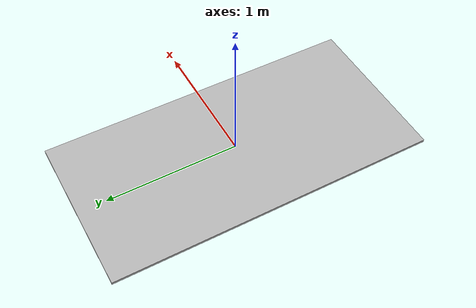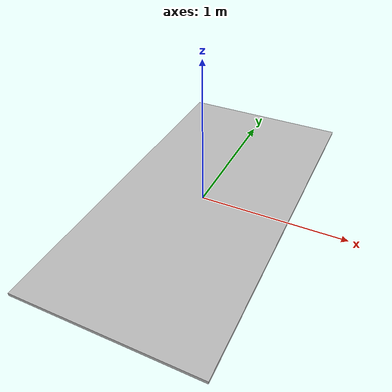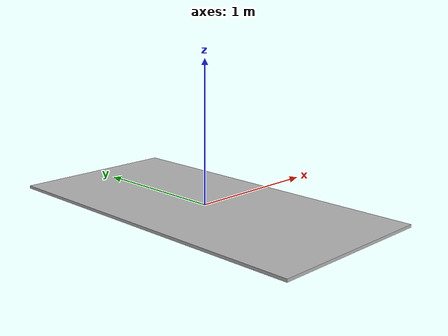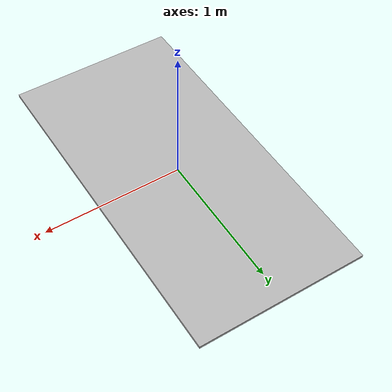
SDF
<?xml version="1.0" ?>
<sdf version="1.5">
  <model name="stage">
    <static>true</static>
    <link name="link">
      <collision name="collision">
        <geometry>
          <box>
            <size>1.2192 2.4384 .02</size>
          </box>
        </geometry>
      </collision>
      <visual name="visual">
        <cast_shadows>false</cast_shadows>
        <geometry>
          <box>
            <size>1.2192 2.4384 .02</size>
          </box>
        </geometry>
        <material>
          <script>
            <uri>model://stage/materials/scripts</uri>
            <uri>model://stage/materials/textures</uri>
            <name>vrc/stage</name>
          </script>
        </material>
      </visual>
    </link>
  </model>
</sdf>
